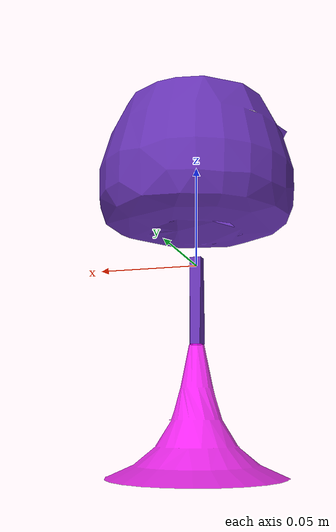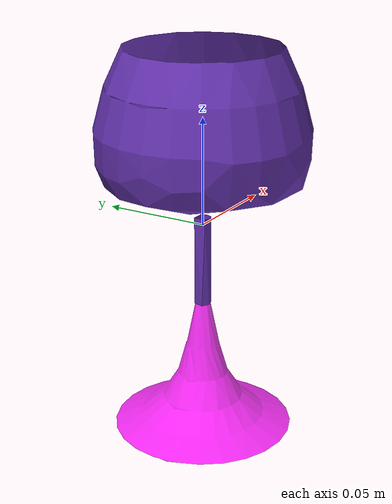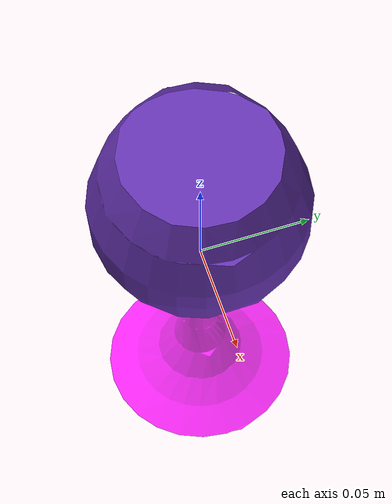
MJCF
<?xml version="1.0" encoding="utf-8"?>
<mujoco model="top_watertight_tiny">

  <asset>

    <mesh file="top_watertight_tiny.obj"/>

    <mesh file="top_watertight_tiny_collision_0.obj"/>

    <mesh file="top_watertight_tiny_collision_1.obj"/>

    <mesh file="top_watertight_tiny_collision_2.obj"/>

    <mesh file="top_watertight_tiny_collision_3.obj"/>

    <mesh file="top_watertight_tiny_collision_4.obj"/>

    <mesh file="top_watertight_tiny_collision_5.obj"/>

    <mesh file="top_watertight_tiny_collision_6.obj"/>

    <mesh file="top_watertight_tiny_collision_7.obj"/>

    <mesh file="top_watertight_tiny_collision_8.obj"/>

    <mesh file="top_watertight_tiny_collision_9.obj"/>

    <mesh file="top_watertight_tiny_collision_10.obj"/>

    <mesh file="top_watertight_tiny_collision_11.obj"/>

    <mesh file="top_watertight_tiny_collision_12.obj"/>

    <mesh file="top_watertight_tiny_collision_13.obj"/>

    <mesh file="top_watertight_tiny_collision_14.obj"/>

    <mesh file="top_watertight_tiny_collision_15.obj"/>

    <mesh file="top_watertight_tiny_collision_16.obj"/>

    <mesh file="top_watertight_tiny_collision_17.obj"/>

    <mesh file="top_watertight_tiny_collision_18.obj"/>

    <mesh file="top_watertight_tiny_collision_19.obj"/>

    <mesh file="top_watertight_tiny_collision_20.obj"/>

    <mesh file="top_watertight_tiny_collision_21.obj"/>

    <mesh file="top_watertight_tiny_collision_22.obj"/>

    <mesh file="top_watertight_tiny_collision_23.obj"/>

    <mesh file="top_watertight_tiny_collision_24.obj"/>

    <mesh file="top_watertight_tiny_collision_25.obj"/>

    <mesh file="top_watertight_tiny_collision_26.obj"/>

    <mesh file="top_watertight_tiny_collision_27.obj"/>

    <mesh file="top_watertight_tiny_collision_28.obj"/>

    <mesh file="top_watertight_tiny_collision_29.obj"/>

    <mesh file="top_watertight_tiny_collision_30.obj"/>

    <mesh file="top_watertight_tiny_collision_31.obj"/>

    <mesh file="top_watertight_tiny_collision_32.obj"/>

    <mesh file="top_watertight_tiny_collision_33.obj"/>

    <mesh file="top_watertight_tiny_collision_34.obj"/>

    <mesh file="top_watertight_tiny_collision_35.obj"/>

    <mesh file="top_watertight_tiny_collision_36.obj"/>

    <mesh file="top_watertight_tiny_collision_37.obj"/>

    <mesh file="top_watertight_tiny_collision_38.obj"/>

    <mesh file="top_watertight_tiny_collision_39.obj"/>

    <mesh file="top_watertight_tiny_collision_40.obj"/>

    <mesh file="top_watertight_tiny_collision_41.obj"/>

    <mesh file="top_watertight_tiny_collision_42.obj"/>

    <mesh file="top_watertight_tiny_collision_43.obj"/>

    <mesh file="top_watertight_tiny_collision_44.obj"/>

    <mesh file="top_watertight_tiny_collision_45.obj"/>

    <mesh file="top_watertight_tiny_collision_46.obj"/>

    <mesh file="top_watertight_tiny_collision_47.obj"/>

    <mesh file="top_watertight_tiny_collision_48.obj"/>

    <mesh file="top_watertight_tiny_collision_49.obj"/>

    <mesh file="top_watertight_tiny_collision_50.obj"/>

    <mesh file="top_watertight_tiny_collision_51.obj"/>

    <mesh file="top_watertight_tiny_collision_52.obj"/>

    <mesh file="top_watertight_tiny_collision_53.obj"/>

    <mesh file="top_watertight_tiny_collision_54.obj"/>

    <mesh file="top_watertight_tiny_collision_55.obj"/>

    <mesh file="top_watertight_tiny_collision_56.obj"/>

    <mesh file="top_watertight_tiny_collision_57.obj"/>

    <mesh file="top_watertight_tiny_collision_58.obj"/>

    <mesh file="top_watertight_tiny_collision_59.obj"/>

    <mesh file="top_watertight_tiny_collision_60.obj"/>

    <mesh file="top_watertight_tiny_collision_61.obj"/>

    <mesh file="top_watertight_tiny_collision_62.obj"/>

    <mesh file="top_watertight_tiny_collision_63.obj"/>

    <mesh file="top_watertight_tiny_collision_64.obj"/>

    <mesh file="top_watertight_tiny_collision_65.obj"/>

    <mesh file="top_watertight_tiny_collision_66.obj"/>

    <mesh file="top_watertight_tiny_collision_67.obj"/>

    <mesh file="top_watertight_tiny_collision_68.obj"/>

    <mesh file="top_watertight_tiny_collision_69.obj"/>

    <mesh file="top_watertight_tiny_collision_70.obj"/>

    <mesh file="top_watertight_tiny_collision_71.obj"/>

    <mesh file="top_watertight_tiny_collision_72.obj"/>

    <mesh file="top_watertight_tiny_collision_73.obj"/>

    <mesh file="top_watertight_tiny_collision_74.obj"/>

    <mesh file="top_watertight_tiny_collision_75.obj"/>

    <mesh file="bottom_watertight_tiny.obj"/>

    <mesh file="bottom_watertight_tiny_collision_0.obj"/>

    <mesh file="bottom_watertight_tiny_collision_1.obj"/>

    <mesh file="bottom_watertight_tiny_collision_2.obj"/>

    <mesh file="bottom_watertight_tiny_collision_3.obj"/>

    <mesh file="bottom_watertight_tiny_collision_4.obj"/>

    <mesh file="bottom_watertight_tiny_collision_5.obj"/>

    <mesh file="bottom_watertight_tiny_collision_6.obj"/>

    <mesh file="bottom_watertight_tiny_collision_7.obj"/>

    <mesh file="bottom_watertight_tiny_collision_8.obj"/>

    <mesh file="bottom_watertight_tiny_collision_9.obj"/>

    <mesh file="bottom_watertight_tiny_collision_10.obj"/>

    <mesh file="bottom_watertight_tiny_collision_11.obj"/>

    <mesh file="bottom_watertight_tiny_collision_12.obj"/>

    <mesh file="bottom_watertight_tiny_collision_13.obj"/>

    <mesh file="bottom_watertight_tiny_collision_14.obj"/>

    <mesh file="bottom_watertight_tiny_collision_15.obj"/>

    <mesh file="bottom_watertight_tiny_collision_16.obj"/>

    <mesh file="bottom_watertight_tiny_collision_17.obj"/>

    <mesh file="bottom_watertight_tiny_collision_18.obj"/>

    <mesh file="bottom_watertight_tiny_collision_19.obj"/>

    <mesh file="bottom_watertight_tiny_collision_20.obj"/>

    <mesh file="bottom_watertight_tiny_collision_21.obj"/>

    <mesh file="bottom_watertight_tiny_collision_22.obj"/>

    <mesh file="bottom_watertight_tiny_collision_23.obj"/>

    <mesh file="bottom_watertight_tiny_collision_24.obj"/>

  </asset>

  <worldbody>

    <body name="top_watertight_tiny">

      <freejoint/>

      <geom mesh="top_watertight_tiny" group="2" type="mesh" rgba="0.4 0.2 0.7 1" contype="0" conaffinity="0" solimp="0.90 0.95 0.001" solref="0.02 1.0" density="100" friction="0.95 0.4 0.3"/>

      <geom mesh="top_watertight_tiny_collision_0" rgba="0.3318055563791069 0.07789259720692165 0.03479006715317501 1" group="3" type="mesh" solimp="0.90 0.95 0.001" solref="0.02 1.0" density="100" friction="0.95 0.4 0.3"/>

      <geom mesh="top_watertight_tiny_collision_1" rgba="0.5610256652445395 0.8833038668613342 0.15827910009219792 1" group="3" type="mesh" solimp="0.90 0.95 0.001" solref="0.02 1.0" density="100" friction="0.95 0.4 0.3"/>

      <geom mesh="top_watertight_tiny_collision_2" rgba="0.970819196779914 0.7534256230768628 0.0038344530235387975 1" group="3" type="mesh" solimp="0.90 0.95 0.001" solref="0.02 1.0" density="100" friction="0.95 0.4 0.3"/>

      <geom mesh="top_watertight_tiny_collision_3" rgba="0.8050905992115005 0.3476817581827777 0.5950229970157955 1" group="3" type="mesh" solimp="0.90 0.95 0.001" solref="0.02 1.0" density="100" friction="0.95 0.4 0.3"/>

      <geom mesh="top_watertight_tiny_collision_4" rgba="0.408946228572466 0.9459348199435108 0.24036218252489872 1" group="3" type="mesh" solimp="0.90 0.95 0.001" solref="0.02 1.0" density="100" friction="0.95 0.4 0.3"/>

      <geom mesh="top_watertight_tiny_collision_5" rgba="0.11315713751419043 0.5619429396316947 0.3415533918252548 1" group="3" type="mesh" solimp="0.90 0.95 0.001" solref="0.02 1.0" density="100" friction="0.95 0.4 0.3"/>

      <geom mesh="top_watertight_tiny_collision_6" rgba="0.8443143503637058 0.6645606342522927 0.92458350370936 1" group="3" type="mesh" solimp="0.90 0.95 0.001" solref="0.02 1.0" density="100" friction="0.95 0.4 0.3"/>

      <geom mesh="top_watertight_tiny_collision_7" rgba="0.4501773929905869 0.20052472706555347 0.7040189912291799 1" group="3" type="mesh" solimp="0.90 0.95 0.001" solref="0.02 1.0" density="100" friction="0.95 0.4 0.3"/>

      <geom mesh="top_watertight_tiny_collision_8" rgba="0.3921972619473699 0.06777116389867077 0.16343262265463943 1" group="3" type="mesh" solimp="0.90 0.95 0.001" solref="0.02 1.0" density="100" friction="0.95 0.4 0.3"/>

      <geom mesh="top_watertight_tiny_collision_9" rgba="0.2799422858900791 0.6876311727359553 0.2681587391603456 1" group="3" type="mesh" solimp="0.90 0.95 0.001" solref="0.02 1.0" density="100" friction="0.95 0.4 0.3"/>

      <geom mesh="top_watertight_tiny_collision_10" rgba="0.7347156812561227 0.026324487280106612 0.01918860288573543 1" group="3" type="mesh" solimp="0.90 0.95 0.001" solref="0.02 1.0" density="100" friction="0.95 0.4 0.3"/>

      <geom mesh="top_watertight_tiny_collision_11" rgba="0.22297520064977783 0.3524620762578946 0.8473711809214083 1" group="3" type="mesh" solimp="0.90 0.95 0.001" solref="0.02 1.0" density="100" friction="0.95 0.4 0.3"/>

      <geom mesh="top_watertight_tiny_collision_12" rgba="0.49145862453444844 0.0351765629039027 0.30795320922768643 1" group="3" type="mesh" solimp="0.90 0.95 0.001" solref="0.02 1.0" density="100" friction="0.95 0.4 0.3"/>

      <geom mesh="top_watertight_tiny_collision_13" rgba="0.9537978526375237 0.7102981732911392 0.9372599779042184 1" group="3" type="mesh" solimp="0.90 0.95 0.001" solref="0.02 1.0" density="100" friction="0.95 0.4 0.3"/>

      <geom mesh="top_watertight_tiny_collision_14" rgba="0.24342308774151156 0.5774550763514645 0.08502324391931027 1" group="3" type="mesh" solimp="0.90 0.95 0.001" solref="0.02 1.0" density="100" friction="0.95 0.4 0.3"/>

      <geom mesh="top_watertight_tiny_collision_15" rgba="0.06667342555331923 0.4688351717903354 0.08394277865382593 1" group="3" type="mesh" solimp="0.90 0.95 0.001" solref="0.02 1.0" density="100" friction="0.95 0.4 0.3"/>

      <geom mesh="top_watertight_tiny_collision_16" rgba="0.4041142420860754 0.9745683302756053 0.771728366325444 1" group="3" type="mesh" solimp="0.90 0.95 0.001" solref="0.02 1.0" density="100" friction="0.95 0.4 0.3"/>

      <geom mesh="top_watertight_tiny_collision_17" rgba="0.9748959943080634 0.6416058064125608 0.9041904663099413 1" group="3" type="mesh" solimp="0.90 0.95 0.001" solref="0.02 1.0" density="100" friction="0.95 0.4 0.3"/>

      <geom mesh="top_watertight_tiny_collision_18" rgba="0.5038529940745751 0.7525800739620442 0.642733595873666 1" group="3" type="mesh" solimp="0.90 0.95 0.001" solref="0.02 1.0" density="100" friction="0.95 0.4 0.3"/>

      <geom mesh="top_watertight_tiny_collision_19" rgba="0.9650968863307412 0.6929281668245112 0.7621411442140001 1" group="3" type="mesh" solimp="0.90 0.95 0.001" solref="0.02 1.0" density="100" friction="0.95 0.4 0.3"/>

      <geom mesh="top_watertight_tiny_collision_20" rgba="0.6288147349473465 0.8272542562358648 0.6910805635609468 1" group="3" type="mesh" solimp="0.90 0.95 0.001" solref="0.02 1.0" density="100" friction="0.95 0.4 0.3"/>

      <geom mesh="top_watertight_tiny_collision_21" rgba="0.5151932426174921 0.0896090630872487 0.31423784784026376 1" group="3" type="mesh" solimp="0.90 0.95 0.001" solref="0.02 1.0" density="100" friction="0.95 0.4 0.3"/>

      <geom mesh="top_watertight_tiny_collision_22" rgba="0.8119775113055948 0.9718172215984479 0.2557655256350846 1" group="3" type="mesh" solimp="0.90 0.95 0.001" solref="0.02 1.0" density="100" friction="0.95 0.4 0.3"/>

      <geom mesh="top_watertight_tiny_collision_23" rgba="0.5262002005778904 0.18098694028235085 0.8534814200643067 1" group="3" type="mesh" solimp="0.90 0.95 0.001" solref="0.02 1.0" density="100" friction="0.95 0.4 0.3"/>

      <geom mesh="top_watertight_tiny_collision_24" rgba="0.013389003114139264 0.5229551617087345 0.41907840990781065 1" group="3" type="mesh" solimp="0.90 0.95 0.001" solref="0.02 1.0" density="100" friction="0.95 0.4 0.3"/>

      <geom mesh="top_watertight_tiny_collision_25" rgba="0.7755571335860303 0.22556506295181789 0.9140958922906762 1" group="3" type="mesh" solimp="0.90 0.95 0.001" solref="0.02 1.0" density="100" friction="0.95 0.4 0.3"/>

      <geom mesh="top_watertight_tiny_collision_26" rgba="0.7498552811791092 0.1833244512236578 0.06890021289448423 1" group="3" type="mesh" solimp="0.90 0.95 0.001" solref="0.02 1.0" density="100" friction="0.95 0.4 0.3"/>

      <geom mesh="top_watertight_tiny_collision_27" rgba="0.6903964960263921 0.00013777870434905637 0.2910144863619406 1" group="3" type="mesh" solimp="0.90 0.95 0.001" solref="0.02 1.0" density="100" friction="0.95 0.4 0.3"/>

      <geom mesh="top_watertight_tiny_collision_28" rgba="0.7855844093905571 0.7202836291134536 0.3200378466799825 1" group="3" type="mesh" solimp="0.90 0.95 0.001" solref="0.02 1.0" density="100" friction="0.95 0.4 0.3"/>

      <geom mesh="top_watertight_tiny_collision_29" rgba="0.7746582727234691 0.5139537585889999 0.905766116432272 1" group="3" type="mesh" solimp="0.90 0.95 0.001" solref="0.02 1.0" density="100" friction="0.95 0.4 0.3"/>

      <geom mesh="top_watertight_tiny_collision_30" rgba="0.9221678784383275 0.7296055503788174 0.6996965745152166 1" group="3" type="mesh" solimp="0.90 0.95 0.001" solref="0.02 1.0" density="100" friction="0.95 0.4 0.3"/>

      <geom mesh="top_watertight_tiny_collision_31" rgba="0.0671412109981282 0.4785930514400567 0.06682407543797075 1" group="3" type="mesh" solimp="0.90 0.95 0.001" solref="0.02 1.0" density="100" friction="0.95 0.4 0.3"/>

      <geom mesh="top_watertight_tiny_collision_32" rgba="0.20132371020541162 0.4945422192485456 0.794061569594711 1" group="3" type="mesh" solimp="0.90 0.95 0.001" solref="0.02 1.0" density="100" friction="0.95 0.4 0.3"/>

      <geom mesh="top_watertight_tiny_collision_33" rgba="0.9002871351163636 0.3565029949283399 0.6610124041369679 1" group="3" type="mesh" solimp="0.90 0.95 0.001" solref="0.02 1.0" density="100" friction="0.95 0.4 0.3"/>

      <geom mesh="top_watertight_tiny_collision_34" rgba="0.9969402480897955 0.42471237391122196 0.1499175694918402 1" group="3" type="mesh" solimp="0.90 0.95 0.001" solref="0.02 1.0" density="100" friction="0.95 0.4 0.3"/>

      <geom mesh="top_watertight_tiny_collision_35" rgba="0.573855832792514 0.5664624123202326 0.38472832654824474 1" group="3" type="mesh" solimp="0.90 0.95 0.001" solref="0.02 1.0" density="100" friction="0.95 0.4 0.3"/>

      <geom mesh="top_watertight_tiny_collision_36" rgba="0.45260602956278484 0.9409518218855284 0.6111953884082176 1" group="3" type="mesh" solimp="0.90 0.95 0.001" solref="0.02 1.0" density="100" friction="0.95 0.4 0.3"/>

      <geom mesh="top_watertight_tiny_collision_37" rgba="0.6972114774781999 0.8247688682176325 0.8253722877085626 1" group="3" type="mesh" solimp="0.90 0.95 0.001" solref="0.02 1.0" density="100" friction="0.95 0.4 0.3"/>

      <geom mesh="top_watertight_tiny_collision_38" rgba="0.33921350573164366 0.5043797132605846 0.4539848361065789 1" group="3" type="mesh" solimp="0.90 0.95 0.001" solref="0.02 1.0" density="100" friction="0.95 0.4 0.3"/>

      <geom mesh="top_watertight_tiny_collision_39" rgba="0.7534874304573235 0.8438266676856433 0.6663595673615954 1" group="3" type="mesh" solimp="0.90 0.95 0.001" solref="0.02 1.0" density="100" friction="0.95 0.4 0.3"/>

      <geom mesh="top_watertight_tiny_collision_40" rgba="0.027971055488883456 0.254574311847269 0.9124770769533249 1" group="3" type="mesh" solimp="0.90 0.95 0.001" solref="0.02 1.0" density="100" friction="0.95 0.4 0.3"/>

      <geom mesh="top_watertight_tiny_collision_41" rgba="0.8716011956438077 0.2844648193676469 0.8498525193797446 1" group="3" type="mesh" solimp="0.90 0.95 0.001" solref="0.02 1.0" density="100" friction="0.95 0.4 0.3"/>

      <geom mesh="top_watertight_tiny_collision_42" rgba="0.3908884575191698 0.7822610018747953 0.4687261323226697 1" group="3" type="mesh" solimp="0.90 0.95 0.001" solref="0.02 1.0" density="100" friction="0.95 0.4 0.3"/>

      <geom mesh="top_watertight_tiny_collision_43" rgba="0.8743941173530685 0.4098072530321363 0.3709886921077209 1" group="3" type="mesh" solimp="0.90 0.95 0.001" solref="0.02 1.0" density="100" friction="0.95 0.4 0.3"/>

      <geom mesh="top_watertight_tiny_collision_44" rgba="0.5910560596260666 0.4596081971790139 0.3499347230179879 1" group="3" type="mesh" solimp="0.90 0.95 0.001" solref="0.02 1.0" density="100" friction="0.95 0.4 0.3"/>

      <geom mesh="top_watertight_tiny_collision_45" rgba="0.08457148918300861 0.3003613061672753 0.8538663116126085 1" group="3" type="mesh" solimp="0.90 0.95 0.001" solref="0.02 1.0" density="100" friction="0.95 0.4 0.3"/>

      <geom mesh="top_watertight_tiny_collision_46" rgba="0.5816376783947048 0.4433109347781562 0.2326217743233906 1" group="3" type="mesh" solimp="0.90 0.95 0.001" solref="0.02 1.0" density="100" friction="0.95 0.4 0.3"/>

      <geom mesh="top_watertight_tiny_collision_47" rgba="0.8604738669040632 0.07465720778649787 0.6199177524950709 1" group="3" type="mesh" solimp="0.90 0.95 0.001" solref="0.02 1.0" density="100" friction="0.95 0.4 0.3"/>

      <geom mesh="top_watertight_tiny_collision_48" rgba="0.6671256320927854 0.35703856319808736 0.6715502092135047 1" group="3" type="mesh" solimp="0.90 0.95 0.001" solref="0.02 1.0" density="100" friction="0.95 0.4 0.3"/>

      <geom mesh="top_watertight_tiny_collision_49" rgba="0.8725375313632395 0.36842694028917966 0.6965518873466878 1" group="3" type="mesh" solimp="0.90 0.95 0.001" solref="0.02 1.0" density="100" friction="0.95 0.4 0.3"/>

      <geom mesh="top_watertight_tiny_collision_50" rgba="0.011731179914934886 0.47547073044496824 0.8533458794810131 1" group="3" type="mesh" solimp="0.90 0.95 0.001" solref="0.02 1.0" density="100" friction="0.95 0.4 0.3"/>

      <geom mesh="top_watertight_tiny_collision_51" rgba="0.019969779403817833 0.6633069922825711 0.2944807022023137 1" group="3" type="mesh" solimp="0.90 0.95 0.001" solref="0.02 1.0" density="100" friction="0.95 0.4 0.3"/>

      <geom mesh="top_watertight_tiny_collision_52" rgba="0.7251306015377696 0.6456692359565294 0.4610300741489516 1" group="3" type="mesh" solimp="0.90 0.95 0.001" solref="0.02 1.0" density="100" friction="0.95 0.4 0.3"/>

      <geom mesh="top_watertight_tiny_collision_53" rgba="0.9436920560803811 0.8664038876028701 0.25011879485984456 1" group="3" type="mesh" solimp="0.90 0.95 0.001" solref="0.02 1.0" density="100" friction="0.95 0.4 0.3"/>

      <geom mesh="top_watertight_tiny_collision_54" rgba="0.3635018581889178 0.6139820809728221 0.938742887864649 1" group="3" type="mesh" solimp="0.90 0.95 0.001" solref="0.02 1.0" density="100" friction="0.95 0.4 0.3"/>

      <geom mesh="top_watertight_tiny_collision_55" rgba="0.4673508197015196 0.6510527628157985 0.904754369062776 1" group="3" type="mesh" solimp="0.90 0.95 0.001" solref="0.02 1.0" density="100" friction="0.95 0.4 0.3"/>

      <geom mesh="top_watertight_tiny_collision_56" rgba="0.14968253844795887 0.9052341567588071 0.2473284048373493 1" group="3" type="mesh" solimp="0.90 0.95 0.001" solref="0.02 1.0" density="100" friction="0.95 0.4 0.3"/>

      <geom mesh="top_watertight_tiny_collision_57" rgba="0.07077997609446585 0.9305913807581943 0.18684823196127964 1" group="3" type="mesh" solimp="0.90 0.95 0.001" solref="0.02 1.0" density="100" friction="0.95 0.4 0.3"/>

      <geom mesh="top_watertight_tiny_collision_58" rgba="0.6316755432540743 0.11668155509323175 0.9023021459389864 1" group="3" type="mesh" solimp="0.90 0.95 0.001" solref="0.02 1.0" density="100" friction="0.95 0.4 0.3"/>

      <geom mesh="top_watertight_tiny_collision_59" rgba="0.6839352177830346 0.8694878423459407 0.004123120736006403 1" group="3" type="mesh" solimp="0.90 0.95 0.001" solref="0.02 1.0" density="100" friction="0.95 0.4 0.3"/>

      <geom mesh="top_watertight_tiny_collision_60" rgba="0.4740236877054025 0.5259954341272083 0.6864473607961548 1" group="3" type="mesh" solimp="0.90 0.95 0.001" solref="0.02 1.0" density="100" friction="0.95 0.4 0.3"/>

      <geom mesh="top_watertight_tiny_collision_61" rgba="0.7516809684796372 0.47665973744967594 0.43503658154969016 1" group="3" type="mesh" solimp="0.90 0.95 0.001" solref="0.02 1.0" density="100" friction="0.95 0.4 0.3"/>

      <geom mesh="top_watertight_tiny_collision_62" rgba="0.1647070574361661 0.49507263543948965 0.584147399520872 1" group="3" type="mesh" solimp="0.90 0.95 0.001" solref="0.02 1.0" density="100" friction="0.95 0.4 0.3"/>

      <geom mesh="top_watertight_tiny_collision_63" rgba="0.5276849324377711 0.2956997617532524 0.5852631564733385 1" group="3" type="mesh" solimp="0.90 0.95 0.001" solref="0.02 1.0" density="100" friction="0.95 0.4 0.3"/>

      <geom mesh="top_watertight_tiny_collision_64" rgba="0.674932182067709 0.5612865320713796 0.4142863064482396 1" group="3" type="mesh" solimp="0.90 0.95 0.001" solref="0.02 1.0" density="100" friction="0.95 0.4 0.3"/>

      <geom mesh="top_watertight_tiny_collision_65" rgba="0.4570144000215858 0.7173058757696144 0.11107420075761698 1" group="3" type="mesh" solimp="0.90 0.95 0.001" solref="0.02 1.0" density="100" friction="0.95 0.4 0.3"/>

      <geom mesh="top_watertight_tiny_collision_66" rgba="0.4619154072247511 0.8164541007567239 0.1362368933306607 1" group="3" type="mesh" solimp="0.90 0.95 0.001" solref="0.02 1.0" density="100" friction="0.95 0.4 0.3"/>

      <geom mesh="top_watertight_tiny_collision_67" rgba="0.5737397418749416 0.8587836973656798 0.18864798602582422 1" group="3" type="mesh" solimp="0.90 0.95 0.001" solref="0.02 1.0" density="100" friction="0.95 0.4 0.3"/>

      <geom mesh="top_watertight_tiny_collision_68" rgba="0.7887058225219028 0.14305950738302187 0.8099762072922674 1" group="3" type="mesh" solimp="0.90 0.95 0.001" solref="0.02 1.0" density="100" friction="0.95 0.4 0.3"/>

      <geom mesh="top_watertight_tiny_collision_69" rgba="0.9812425181145532 0.3372045826195377 0.31446010352266507 1" group="3" type="mesh" solimp="0.90 0.95 0.001" solref="0.02 1.0" density="100" friction="0.95 0.4 0.3"/>

      <geom mesh="top_watertight_tiny_collision_70" rgba="0.5097122794111693 0.902471571364819 0.014807523421575208 1" group="3" type="mesh" solimp="0.90 0.95 0.001" solref="0.02 1.0" density="100" friction="0.95 0.4 0.3"/>

      <geom mesh="top_watertight_tiny_collision_71" rgba="0.9084857775926287 0.8550335067403159 0.7235258034472386 1" group="3" type="mesh" solimp="0.90 0.95 0.001" solref="0.02 1.0" density="100" friction="0.95 0.4 0.3"/>

      <geom mesh="top_watertight_tiny_collision_72" rgba="0.6741252027531653 0.7342061882522501 0.11674190020673803 1" group="3" type="mesh" solimp="0.90 0.95 0.001" solref="0.02 1.0" density="100" friction="0.95 0.4 0.3"/>

      <geom mesh="top_watertight_tiny_collision_73" rgba="0.653283190675736 0.7474064919301908 0.33460184718495434 1" group="3" type="mesh" solimp="0.90 0.95 0.001" solref="0.02 1.0" density="100" friction="0.95 0.4 0.3"/>

      <geom mesh="top_watertight_tiny_collision_74" rgba="0.5888465891571958 0.6349323474004513 0.40144913914302216 1" group="3" type="mesh" solimp="0.90 0.95 0.001" solref="0.02 1.0" density="100" friction="0.95 0.4 0.3"/>

      <geom mesh="top_watertight_tiny_collision_75" rgba="0.43827338583671915 0.4941736209463268 0.6980349965097773 1" group="3" type="mesh" solimp="0.90 0.95 0.001" solref="0.02 1.0" density="100" friction="0.95 0.4 0.3"/>

      <body name="bottom_watertight_tiny">

        <geom mesh="bottom_watertight_tiny" group="2" type="mesh" rgba="1 0 1 0.8" contype="0" conaffinity="0" solimp="0.90 0.95 0.001" solref="0.02 1.0" density="100" friction="0.95 0.4 0.3"/>

        <geom mesh="bottom_watertight_tiny_collision_0" rgba="0.5206752236920137 0.9148760650420463 0.6457667484245997 1" group="3" type="mesh" solimp="0.90 0.95 0.001" solref="0.02 1.0" density="100" friction="0.95 0.4 0.3"/>

        <geom mesh="bottom_watertight_tiny_collision_1" rgba="0.4826957552973832 0.018273340236024227 0.31880729373566086 1" group="3" type="mesh" solimp="0.90 0.95 0.001" solref="0.02 1.0" density="100" friction="0.95 0.4 0.3"/>

        <geom mesh="bottom_watertight_tiny_collision_2" rgba="0.4129709285513007 0.08484758098655654 0.28438492873805143 1" group="3" type="mesh" solimp="0.90 0.95 0.001" solref="0.02 1.0" density="100" friction="0.95 0.4 0.3"/>

        <geom mesh="bottom_watertight_tiny_collision_3" rgba="0.3535051950620831 0.307961609064459 0.6441520508785427 1" group="3" type="mesh" solimp="0.90 0.95 0.001" solref="0.02 1.0" density="100" friction="0.95 0.4 0.3"/>

        <geom mesh="bottom_watertight_tiny_collision_4" rgba="0.9198731883195904 0.5299000541519732 0.9409336540186441 1" group="3" type="mesh" solimp="0.90 0.95 0.001" solref="0.02 1.0" density="100" friction="0.95 0.4 0.3"/>

        <geom mesh="bottom_watertight_tiny_collision_5" rgba="0.9706679270755393 0.3848044775295504 0.030127862056882893 1" group="3" type="mesh" solimp="0.90 0.95 0.001" solref="0.02 1.0" density="100" friction="0.95 0.4 0.3"/>

        <geom mesh="bottom_watertight_tiny_collision_6" rgba="0.9874873428565522 0.8888866947094992 0.836779214231055 1" group="3" type="mesh" solimp="0.90 0.95 0.001" solref="0.02 1.0" density="100" friction="0.95 0.4 0.3"/>

        <geom mesh="bottom_watertight_tiny_collision_7" rgba="0.036383549814640315 0.6895370309665949 0.6593501386108649 1" group="3" type="mesh" solimp="0.90 0.95 0.001" solref="0.02 1.0" density="100" friction="0.95 0.4 0.3"/>

        <geom mesh="bottom_watertight_tiny_collision_8" rgba="0.3787728032101795 0.7249321198566804 0.6616760003288931 1" group="3" type="mesh" solimp="0.90 0.95 0.001" solref="0.02 1.0" density="100" friction="0.95 0.4 0.3"/>

        <geom mesh="bottom_watertight_tiny_collision_9" rgba="0.48191211479896745 0.41767285834429235 0.6511232680295174 1" group="3" type="mesh" solimp="0.90 0.95 0.001" solref="0.02 1.0" density="100" friction="0.95 0.4 0.3"/>

        <geom mesh="bottom_watertight_tiny_collision_10" rgba="0.6615176532478307 0.586590983531861 0.6973145642586989 1" group="3" type="mesh" solimp="0.90 0.95 0.001" solref="0.02 1.0" density="100" friction="0.95 0.4 0.3"/>

        <geom mesh="bottom_watertight_tiny_collision_11" rgba="0.09132403929414046 0.06692965557192487 0.8990169064084078 1" group="3" type="mesh" solimp="0.90 0.95 0.001" solref="0.02 1.0" density="100" friction="0.95 0.4 0.3"/>

        <geom mesh="bottom_watertight_tiny_collision_12" rgba="0.8747799296440874 0.11913679315894254 0.9719786088182184 1" group="3" type="mesh" solimp="0.90 0.95 0.001" solref="0.02 1.0" density="100" friction="0.95 0.4 0.3"/>

        <geom mesh="bottom_watertight_tiny_collision_13" rgba="0.4744508286284088 0.29994367872486105 0.44567208486517895 1" group="3" type="mesh" solimp="0.90 0.95 0.001" solref="0.02 1.0" density="100" friction="0.95 0.4 0.3"/>

        <geom mesh="bottom_watertight_tiny_collision_14" rgba="0.7108836687091518 0.5066853708204934 0.43776201088176336 1" group="3" type="mesh" solimp="0.90 0.95 0.001" solref="0.02 1.0" density="100" friction="0.95 0.4 0.3"/>

        <geom mesh="bottom_watertight_tiny_collision_15" rgba="0.19436125216023836 0.19690377300960882 0.07564505874676597 1" group="3" type="mesh" solimp="0.90 0.95 0.001" solref="0.02 1.0" density="100" friction="0.95 0.4 0.3"/>

        <geom mesh="bottom_watertight_tiny_collision_16" rgba="0.4882520474452642 0.4493160148515942 0.11994735140036705 1" group="3" type="mesh" solimp="0.90 0.95 0.001" solref="0.02 1.0" density="100" friction="0.95 0.4 0.3"/>

        <geom mesh="bottom_watertight_tiny_collision_17" rgba="0.8283064327321107 0.7763314337214579 0.1697397376918739 1" group="3" type="mesh" solimp="0.90 0.95 0.001" solref="0.02 1.0" density="100" friction="0.95 0.4 0.3"/>

        <geom mesh="bottom_watertight_tiny_collision_18" rgba="0.7073792406760349 0.8586641439302066 0.5949726469114632 1" group="3" type="mesh" solimp="0.90 0.95 0.001" solref="0.02 1.0" density="100" friction="0.95 0.4 0.3"/>

        <geom mesh="bottom_watertight_tiny_collision_19" rgba="0.8547107415599748 0.3546815367123458 0.8290544019112942 1" group="3" type="mesh" solimp="0.90 0.95 0.001" solref="0.02 1.0" density="100" friction="0.95 0.4 0.3"/>

        <geom mesh="bottom_watertight_tiny_collision_20" rgba="0.8684665371880523 0.4772055843226132 0.997857957798704 1" group="3" type="mesh" solimp="0.90 0.95 0.001" solref="0.02 1.0" density="100" friction="0.95 0.4 0.3"/>

        <geom mesh="bottom_watertight_tiny_collision_21" rgba="0.701931746904148 0.864273792495655 0.6275480783582438 1" group="3" type="mesh" solimp="0.90 0.95 0.001" solref="0.02 1.0" density="100" friction="0.95 0.4 0.3"/>

        <geom mesh="bottom_watertight_tiny_collision_22" rgba="0.31011889427799777 0.10428681274310059 0.9452195742635281 1" group="3" type="mesh" solimp="0.90 0.95 0.001" solref="0.02 1.0" density="100" friction="0.95 0.4 0.3"/>

        <geom mesh="bottom_watertight_tiny_collision_23" rgba="0.8830221682885634 0.2678517144714049 0.6991687943033088 1" group="3" type="mesh" solimp="0.90 0.95 0.001" solref="0.02 1.0" density="100" friction="0.95 0.4 0.3"/>

        <geom mesh="bottom_watertight_tiny_collision_24" rgba="0.0034077294137152547 0.9981991293802934 0.6945929866110676 1" group="3" type="mesh" solimp="0.90 0.95 0.001" solref="0.02 1.0" density="100" friction="0.95 0.4 0.3"/>

        <site name="bottom_watertight_tiny_touch_site" pos="0 0 0" size="0.2" rgba="1 0 0 0." type="sphere"/>
      </body>

      <site name="top_watertight_tiny_touch_site" pos="0 0 0" size="0.2" rgba="1 0 0 0." type="sphere"/>
    </body>

  </worldbody>

  <sensor>
    <touch name="top_watertight_tiny_touch" site="top_watertight_tiny_touch_site"/>
    <touch name="bottom_watertight_tiny_touch" site="bottom_watertight_tiny_touch_site"/>
  </sensor>
</mujoco>
